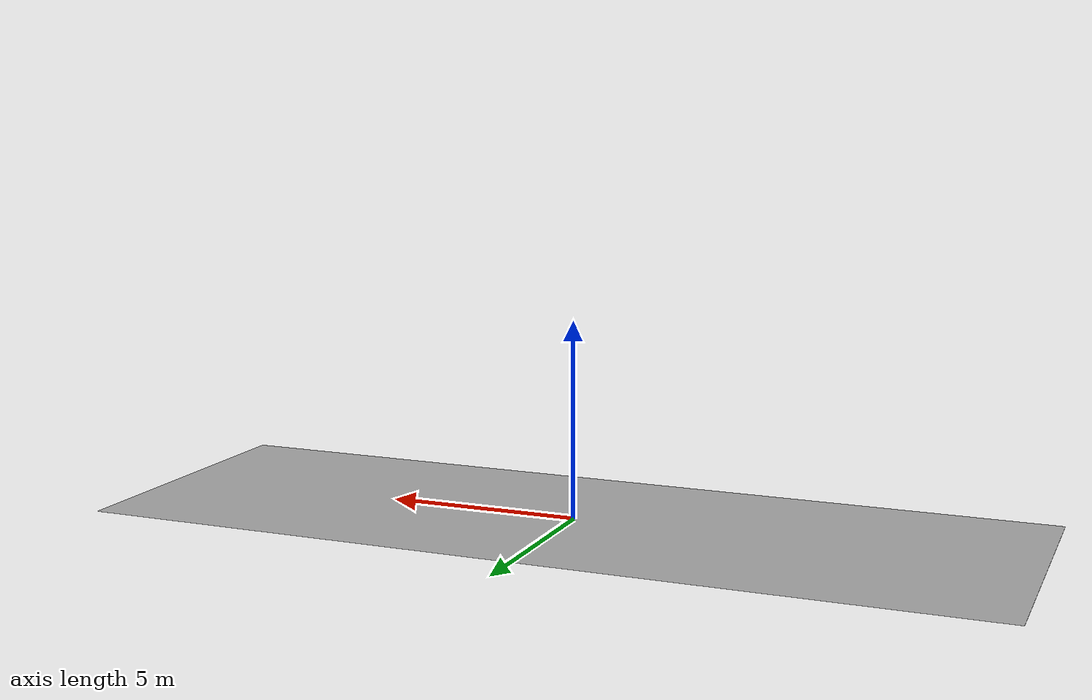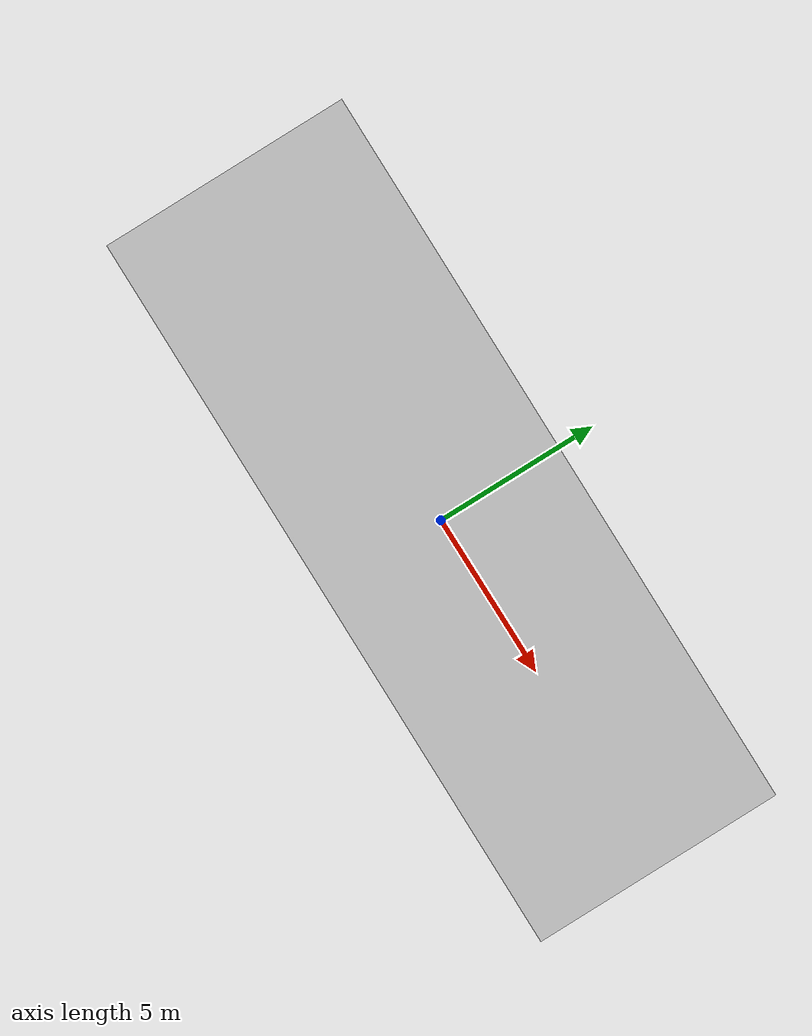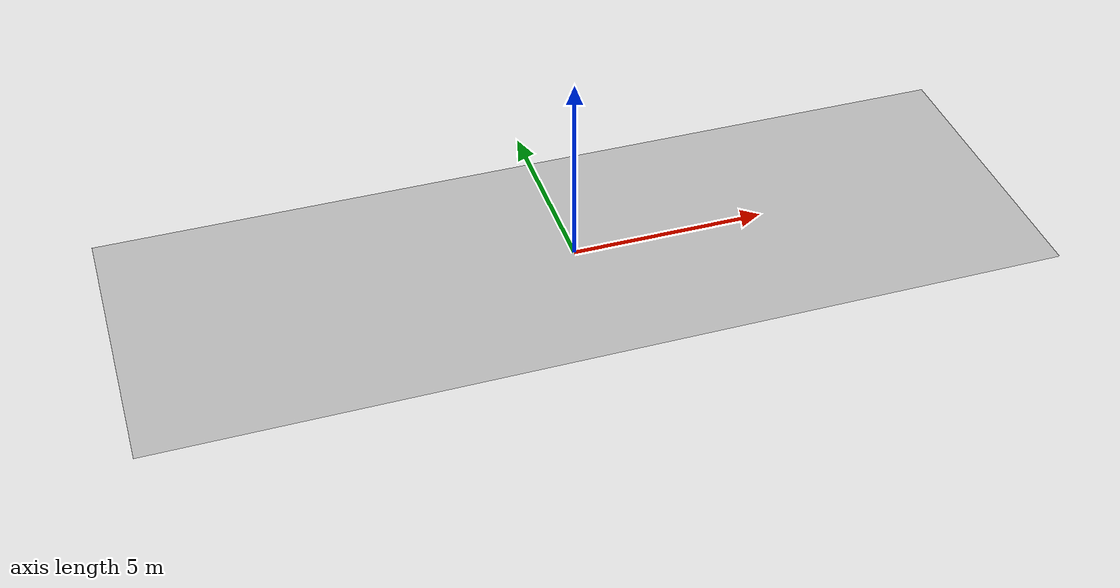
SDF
<?xml version="1.0" ?>
<sdf version="1.5">
  <model name='road'>
    <pose>0 0 0 0 0 0</pose>
    <static>1</static>
    <link name='body'>
       <collision name="road">
          <pose>0 0 0.016 0 0 0</pose>
          <geometry>
            <box>
              <size>22.938 22.954 0.016</size>
            </box>
          </geometry>
        </collision>
        <visual name='road'>
        <cast_shadows>1</cast_shadows>
        <geometry>
          <mesh>
            <uri>model://road/meshes/road.dae</uri>
          </mesh>
        </geometry>
      </visual>
      <velocity_decay>
        <linear>0</linear>
        <angular>0</angular>
      </velocity_decay>
      <self_collide>0</self_collide>
      <kinematic>0</kinematic>
      <gravity>1</gravity>
    </link>
  </model>
</sdf>
